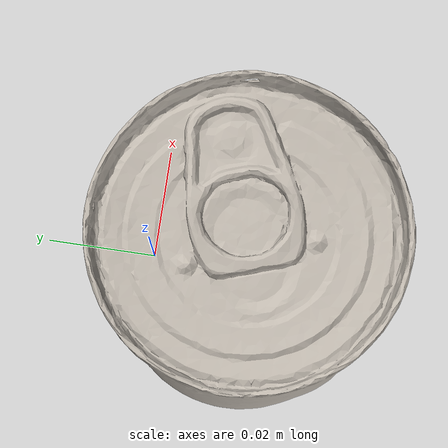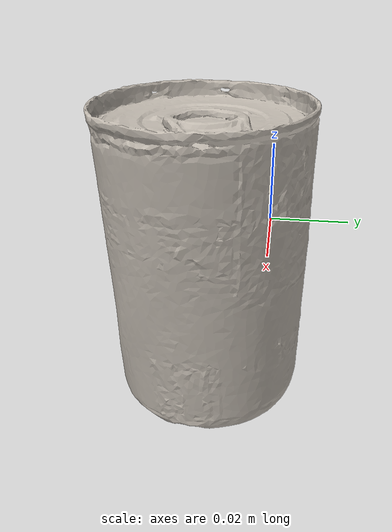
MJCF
<mujoco model="bread">
  <asset>
    <mesh file="nontextured.stl" name="obj_mesh" scale="0.8 0.8 0.8"/>
    <texture file="../../../../../textures/bread.png" type="2d" name="tex-bread" />
    <material name="bread" reflectance="0.7" texrepeat="15 15" texture="tex-bread" texuniform="true"/>
  </asset>
  <worldbody>
    <body>
      <body name="collision">
        <geom pos="0.009168500000000001 -0.0840175 -0.051006499999999996" mesh="obj_mesh" type="mesh" solimp="0.998 0.998 0.001" solref="0.001 1" density="50" friction="0.95 0.3 0.1"  material="bread" group="1" condim="4"/>
      </body>
      <body name="visual">
        <geom pos="0.009168500000000001 -0.0840175 -0.051006499999999996" mesh="obj_mesh" type="mesh" material="bread"  conaffinity="0" contype="0"  group="0" mass="0.0001"/>
        <geom pos="0.009168500000000001 -0.0840175 -0.051006499999999996" mesh="obj_mesh" type="mesh" material="bread"  conaffinity="0" contype="0"  group="1" mass="0.0001"/>
      </body>
      <site rgba="0 0 0 0" size="0.005" pos="0 0 -0.0509275" name="bottom_site"/>
      <site rgba="0 0 0 0" size="0.005" pos="0 0 0.0509275" name="top_site"/>
      <site rgba="0 0 0 0" size="0.005" pos="0.0339555 0.0338715 0.0509275" name="horizontal_radius_site"/>
    </body>
  </worldbody>
</mujoco>
